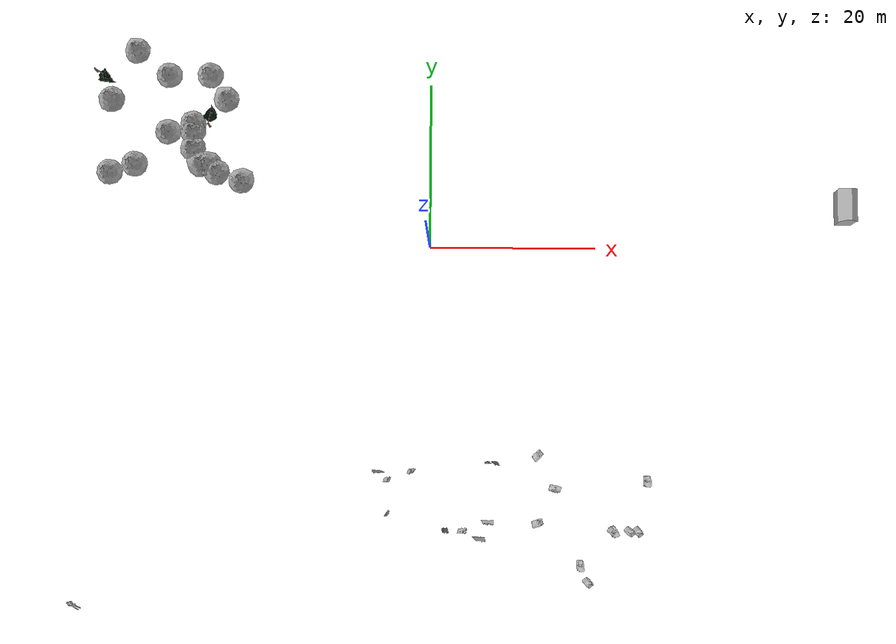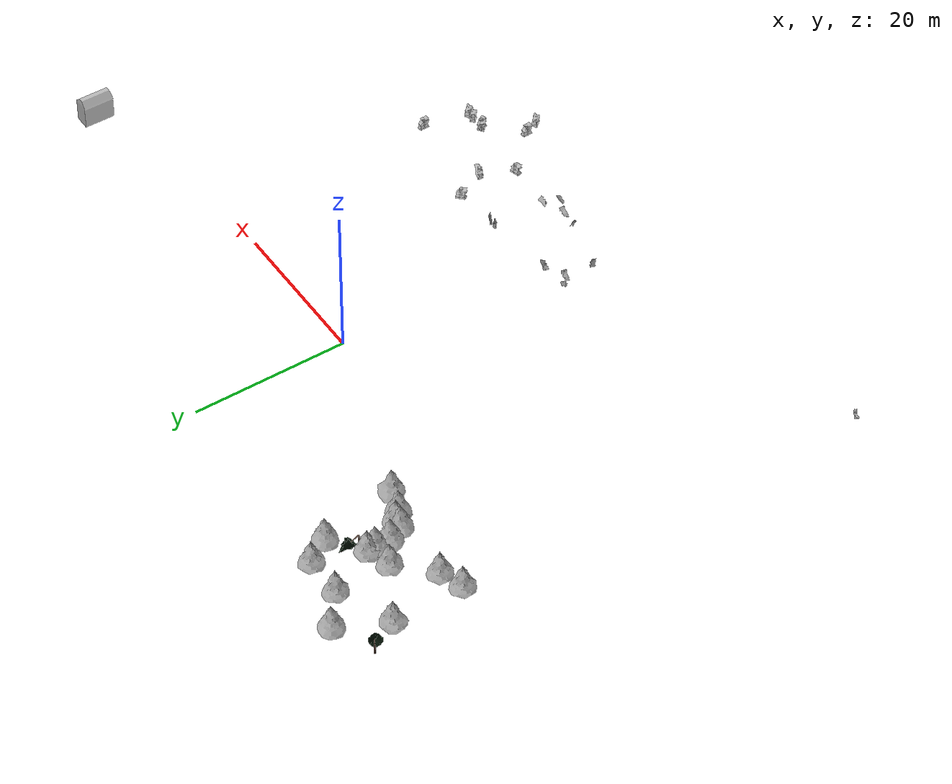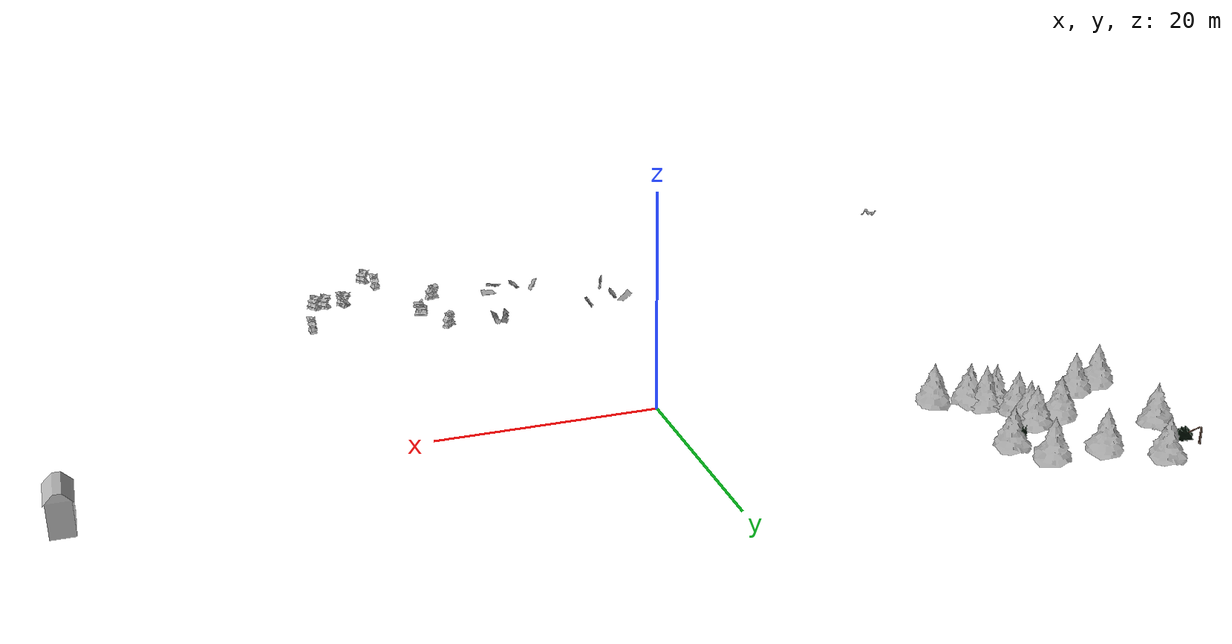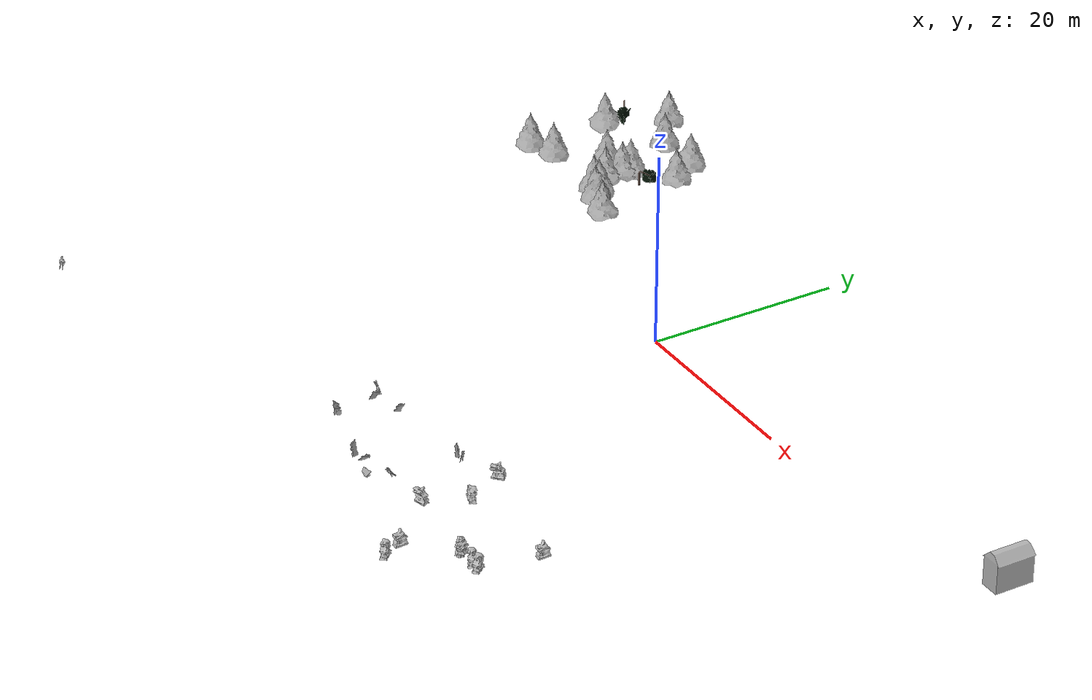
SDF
<sdf version="1.6">
 <world name="default">
  <scene>
   <ambient>0.4 0.4 0.4 1</ambient>
   <background>224 243 249 10</background>
   <shadows>true</shadows>
   <grid>false</grid>
   <sky><clouds><speed>20</speed></clouds></sky>
  </scene>
  <include><uri>model://sun</uri></include>
  <include><static>true</static><uri>model://landscape/man_lay</uri><pose>-42 -43 0.01  0 0 97</pose></include>
  <include><static>true</static><uri>model://landscape/house</uri><pose>50 5 .01  0 0 0</pose></include>
  <include><uri>model://landscape/ice</uri><name>ice1</name><pose>8 -26 0 48  49  0</pose></include>
  <include><uri>model://landscape/ice</uri><name>ice2</name><pose>-6 -27 0 46  139 0</pose></include>
  <include><uri>model://landscape/ice</uri><name>ice3</name><pose>2  -34 0 327 331 0</pose></include>
  <include><uri>model://landscape/ice</uri><name>ice4</name><pose>-5 -32 0 53  124 0</pose></include>
  <include><uri>model://landscape/ice</uri><name>ice5</name><pose>7  -33 0 7 66  0</pose></include>
  <include><uri>model://landscape/ice</uri><name>ice6</name><pose>-5 -28 0 123 310 0</pose></include>
  <include><uri>model://landscape/ice</uri><name>ice7</name><pose>4  -34 0 16  260 0</pose></include>
  <include><uri>model://landscape/ice</uri><name>ice8</name><pose>-2 -27 0 138 43  0</pose></include>
  <include><uri>model://landscape/ice</uri><name>ice9</name><pose>7  -26 0 11  61  0</pose></include>
  <include><uri>model://landscape/ice</uri><name>ice10</name><pose>6  -35 0 188 292 0</pose></include>
  <include><uri>model://landscape/pine_tree</uri><name>tree1</name><pose>-36 10  0.01  0 0 357</pose></include>
  <include><uri>model://landscape/pine_tree</uri><name>tree2</name><pose>-36 24  0.01  0 0 27</pose></include>
  <include><uri>model://landscape/pine_tree</uri><name>tree3</name><pose>-26 9 0.01  0 0 147</pose></include>
  <include>
   <uri>model://landscape/pine_tree_broken</uri>
   <name>broken_tree1</name>
   <pose>-40 21  0.01  0 0 67</pose>
  </include>
  <include><uri>model://landscape/pine_tree</uri><name>tree4</name><pose>-23 8  0.01  0 0 13</pose></include>
  <include><uri>model://landscape/pine_tree</uri><name>tree5</name><pose>-29 12  0.01  0 0 347</pose></include>
  <include><uri>model://landscape/pine_tree</uri><name>tree6</name><pose>-39 18  0.01  0 0 29</pose></include>
  <include><uri>model://landscape/pine_tree</uri><name>tree7</name><pose>-27 21  0.01  0 0 49</pose></include>
  <include><uri>model://landscape/pine_tree</uri><name>tree8</name><pose>-29 14  0.01  0 0 171</pose></include>
  <include>
   <uri>model://landscape/pine_tree_broken</uri>
   <name>broken_tree2</name>
   <pose>-27 16  0.01  0 0 245</pose>
  </include>
  <include><uri>model://landscape/pine_tree</uri><name>tree9</name><pose>-32 21  0.01  0 0 194</pose></include>
  <include><uri>model://landscape/pine_tree</uri><name>tree10</name><pose>-25 18  0.01  0 0 46</pose></include>
  <include><uri>model://landscape/pine_tree</uri><name>tree11</name><pose>-28 10  0.01  0 0 97</pose></include>
  <include><uri>model://landscape/pine_tree</uri><name>tree12</name><pose>-32 14  0.01  0 0 301</pose></include>
  <include><uri>model://landscape/pine_tree</uri><name>tree13</name><pose>-27 10  0.01  0 0 288</pose></include>
  <include><uri>model://landscape/pine_tree</uri><name>tree14</name><pose>-29 15  0.01  0 0 256</pose></include>
  <include><uri>model://landscape/pine_tree</uri><name>tree15</name><pose>-39 9 0.01  0 0 43</pose></include>
  <include><uri>model://landscape/butte</uri><name>butte1</name><pose>18  -38 0.01  0 0 187</pose></include>
  <include><uri>model://landscape/butte</uri><name>butte2</name><pose>25  -34 0.01  0 0 153</pose></include>
  <include><uri>model://landscape/butte</uri><name>butte3</name><pose>19  -40 0.01  0 0 40</pose></include>
  <include><uri>model://landscape/butte</uri><name>butte4</name><pose>22  -34 0.01  0 0 59</pose></include>
  <include><uri>model://landscape/butte</uri><name>butte5</name><pose>24  -34 0.01  0 0 15</pose></include>
  <include><uri>model://landscape/butte</uri><name>butte6</name><pose>13  -33 0.01  0 0 305</pose></include>
  <include><uri>model://landscape/butte</uri><name>butte7</name><pose>15  -29 0.01  0 0 295</pose></include>
  <include><uri>model://landscape/butte</uri><name>butte8</name><pose>22  -34 0.01  0 0 313</pose></include>
  <include><uri>model://landscape/butte</uri><name>butte9</name><pose>13  -25 0.01  0 0 73</pose></include>
  <include><uri>model://landscape/butte</uri><name>butte10</name><pose>26  -28 0.01  0 0 99</pose></include>
 </world>
</sdf>

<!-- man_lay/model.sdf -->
<sdf version="1.6">

  <model name="man lay">
      <pose>0 0 0  0 0 0</pose>
      <static>false</static>
      <link name="man">

        <inertial>
          <mass>100</mass>
        </inertial>

        <collision name="collision">
          <geometry>
            <box>
              <size>2 0.7 0.5</size>
            </box>
          </geometry>
        </collision>

        <visual name="visual">
          <geometry>
            <mesh>
              <uri>model://landscape/man_lay/meshes/man_lay.dae</uri>
            </mesh>
          </geometry>
          <material>
            <script>
              <uri>model://landscape/man_lay/materials/scripts/man_lay.material</uri>
              <name>man_lay</name>
            </script>
          </material>
        </visual>
      </link>
    </model>
</sdf>

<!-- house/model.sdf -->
<sdf version="1.6">

  <model name="house">
      <pose>0 0 0  0 0 0</pose>
      <static>false</static>
      <link name="house">

        <inertial>
          <mass>100</mass>
        </inertial>

        <collision name="collision">
          <pose>0 0 1.85 0 0 0</pose>
          <geometry>
          <box>
            <size>2.35 4 3.7</size>
          </box>
          </geometry>
        </collision>

        <visual name="visual">
          <geometry>
            <mesh>
              <uri>model://landscape/house/meshes/house.dae</uri>
            </mesh>
          </geometry>
          <material>
            <script>
              <uri>model://landscape/house/materials/scripts/house.material</uri>
              <name>house</name>
            </script>
          </material>
        </visual>
      </link>
    </model>
</sdf>

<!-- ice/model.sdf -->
<sdf version="1.6">

  <model name="ice">
      <pose>0 0 0  0 0 0</pose>
      <static>false</static>
      <link name="ice">

        <inertial>
          <mass>100</mass>
        </inertial>

        <collision name="collision">
          <geometry>
            <box>
              <size>1.5 0.9 0.3</size>
            </box>
          </geometry>
        </collision>

        <visual name="visual">
          <geometry>
            <mesh>
              <uri>model://landscape/ice/meshes/ice.dae</uri>
            </mesh>
          </geometry>
          <material>
            <script>
              <uri>model://landscape/ice/materials/scripts/ice.material</uri>
              <name>ice</name>
            </script>
          </material>
        </visual>
      </link>
    </model>
</sdf>

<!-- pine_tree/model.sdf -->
<sdf version="1.6">
  <model name="pine_tree">
    <static>true</static>
    <link name="link">
      <collision name="collision">
        <pose>0 0 2 0 0 0</pose>

        <geometry>
          <box>
            <size>0.5 0.5 4</size>
          </box>
        </geometry>
      </collision>
      <visual name="branch">
        <geometry>
          <mesh>
            <uri>model://landscape/pine_tree/meshes/pine_tree.dae</uri>
            <submesh>
              <name>Branch</name>
            </submesh>
          </mesh>
        </geometry>
        <material>
          <script>
            <uri>model://landscape/pine_tree/materials/scripts/</uri>
            <uri>model://landscape/pine_tree/materials/textures/</uri>
            <name>PineTree/Branch</name>
          </script>
        </material>
      </visual>

      <visual name="bark">
        <geometry>
          <mesh>
            <uri>model://landscape/pine_tree/meshes/pine_tree.dae</uri>
            <submesh>
              <name>Bark</name>
            </submesh>
          </mesh>
        </geometry>
        <material>
          <script>
            <uri>model://landscape/pine_tree/materials/scripts/</uri>
            <uri>model://landscape/pine_tree/materials/textures/</uri>
            <name>PineTree/Bark</name>
          </script>
        </material>
      </visual>
    </link>
  </model>
</sdf>

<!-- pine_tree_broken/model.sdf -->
<sdf version="1.6">
  <model name="pine_tree_broken">
    <static>true</static>
    <link name="link">
      <collision name="collision">
        <geometry>
          <box>
            <size>0.6 2.5 1.47</size>
          </box>
        </geometry>
      </collision>
      <visual name="branch">
        <geometry>
          <mesh>
            <uri>model://landscape/pine_tree_broken/meshes/pine_tree_broken.dae</uri>
            <submesh>
              <name>Branch</name>
            </submesh>
          </mesh>
        </geometry>
        <material>
          <script>
            <uri>model://landscape/pine_tree_broken/materials/scripts/</uri>
            <uri>model://landscape/pine_tree_broken/materials/textures/</uri>
            <name>PineTree/Branch</name>
          </script>
        </material>
      </visual>

      <visual name="bark">
        <geometry>
          <mesh>
            <uri>model://landscape/pine_tree_broken/meshes/pine_tree_broken.dae</uri>
            <submesh>
              <name>Bark</name>
            </submesh>
          </mesh>
        </geometry>
        <material>
          <script>
            <uri>model://landscape/pine_tree_broken/materials/scripts/</uri>
            <uri>model://landscape/pine_tree_broken/materials/textures/</uri>
            <name>PineTree/Bark</name>
          </script>
        </material>
      </visual>
    </link>
  </model>
</sdf>

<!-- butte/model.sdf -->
<sdf version="1.6">

  <model name="butte">
      <pose>0 0 0  0 0 0</pose>
      <static>true</static>
      <link name="butte">

        <collision name="collision">
          <pose>0 0 0.8 0 0 0</pose>
          <geometry>
            <box>
              <size>0.5 0.7 1.6</size>
            </box>
          </geometry>
        </collision>

        <visual name="visual">
          <geometry>
            <mesh>
              <uri>model://landscape/butte/meshes/butte.dae</uri>
              <submesh>
                <name>Butte2</name>
              </submesh>
            </mesh>
          </geometry>
          <material>
            <script>
              <uri>model://landscape/butte/materials/scripts/butte.material</uri>
              <name>butte/winter</name>
            </script>
          </material>
        </visual>
      </link>
    </model>
</sdf>
